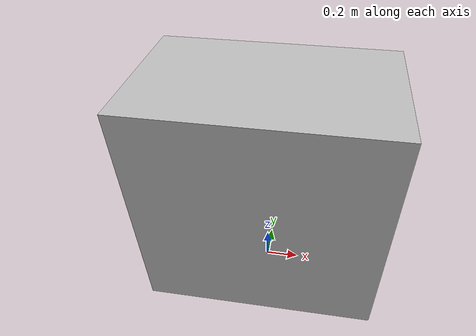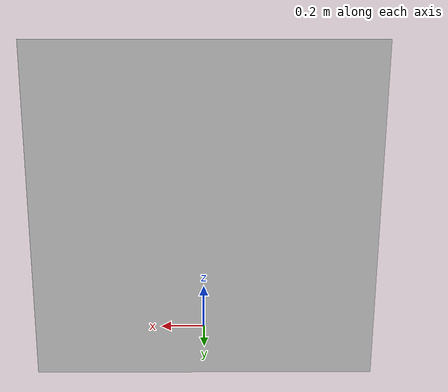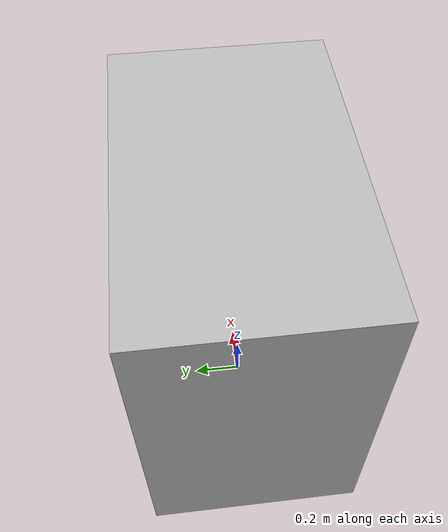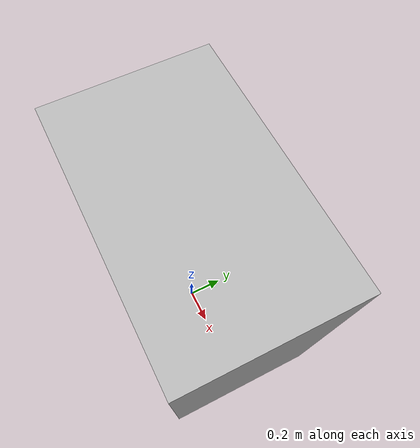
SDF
<?xml version='1.0' encoding='utf-8'?>
<sdf version="1.6">
  <model name="SmallCubicle">
   <static>true</static>
    <link name="body">
      <pose>0 0 0 0 0 0</pose>

      <visual name="visual">
        <geometry>
          <mesh>
            <uri>model://SmallCubicle/meshes/SmallCubicle.obj</uri>
          </mesh>
        </geometry>
      </visual>

      <collision name="collision">
        <geometry>
          <mesh>
            <uri>model://SmallCubicle/meshes/SmallCubicle_Col.obj</uri>
          </mesh>
        </geometry>
      </collision>

    </link>
  </model>
</sdf>
